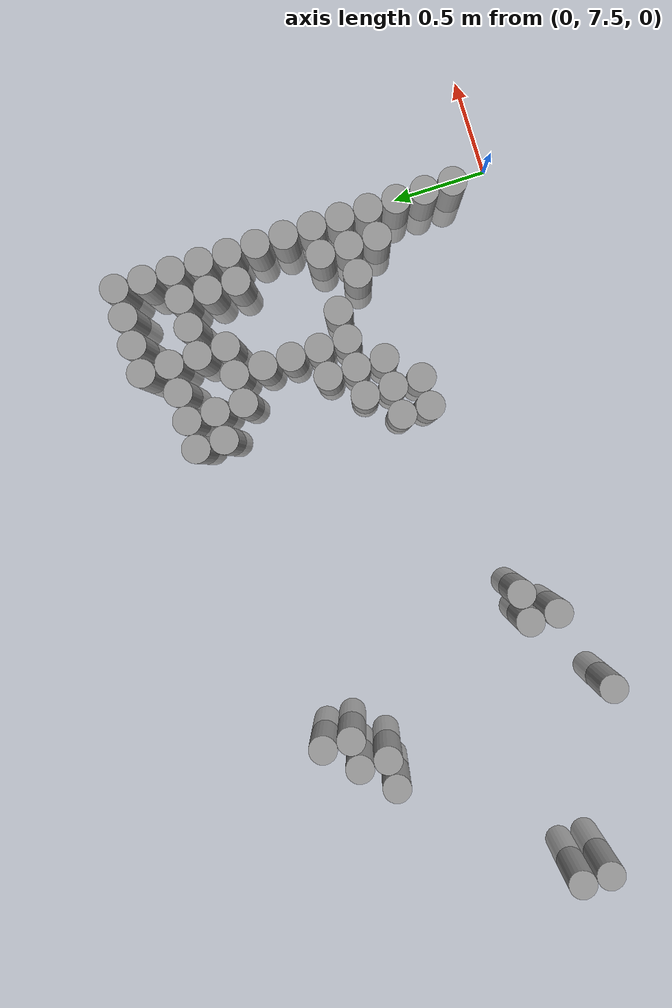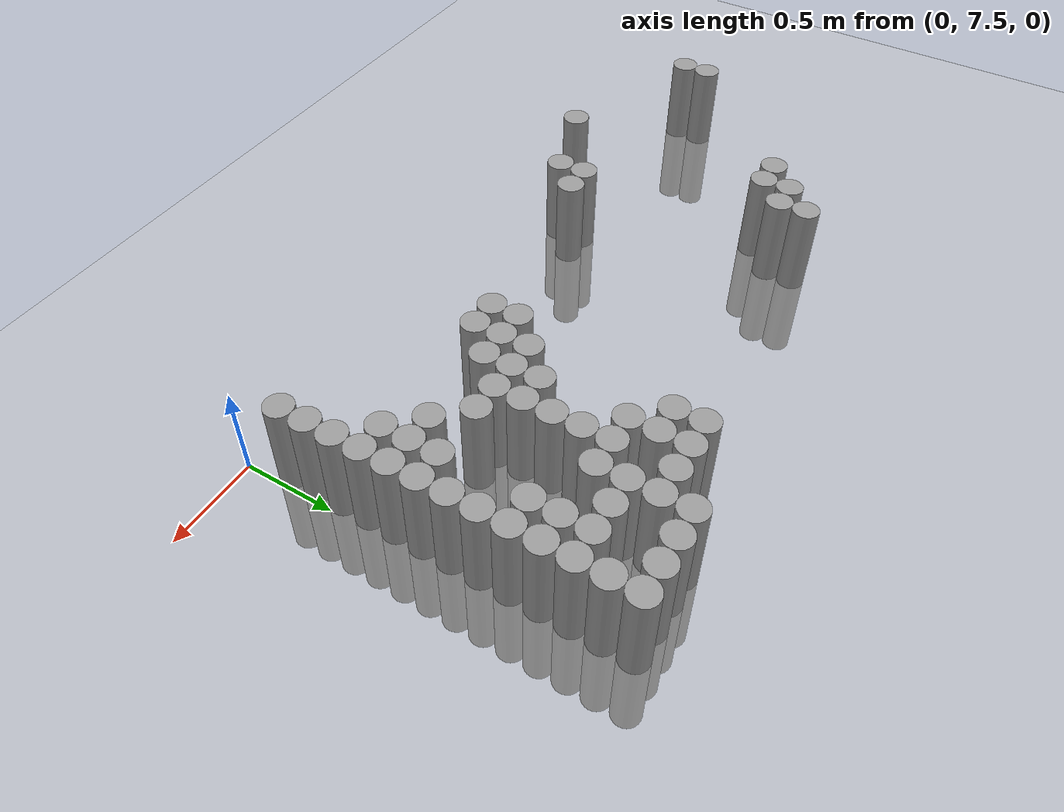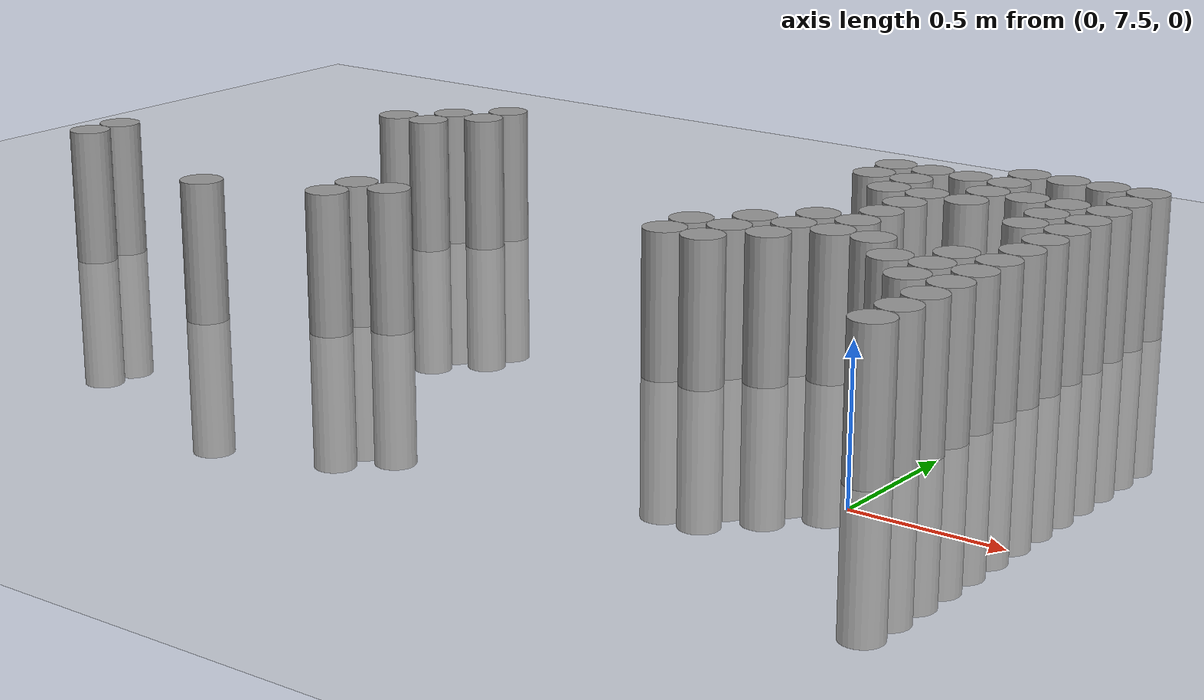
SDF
<sdf version="1.6">
 <world name="default">
  <model name="ground_plane">
   <static>1</static>
   <static>1</static>
   <link name="link">
    <collision name="collision">
     <geometry><plane><normal>0 0 1</normal><size>100 100</size></plane></geometry>
     <surface><friction><ode><mu>100</mu><mu2>50</mu2></ode></friction></surface>
    </collision>
    <visual name="visual">
     <cast_shadows>0</cast_shadows>
     <geometry><plane><normal>0 0 1</normal><size>100 100</size></plane></geometry>
     <material>
      <script><uri>file://media/materials/scripts/gazebo.material</uri><name>Gazebo/Grey</name></script>
     </material>
    </visual>
   </link>
  </model>
  <model name="unit_cylinder_162">
   <static>1</static>
   <pose>-3.675000 8.025000 0.000000 0.000000 0.000000 0.000000</pose>
   <link name="link">
    <inertial>
     <mass>1</mass>
     <inertia><ixx>0.145833</ixx><ixy>0</ixy><ixz>0</ixz><iyy>0.145833</iyy><iyz>0</iyz><izz>0.125</izz></inertia>
    </inertial>
    <collision name="collision">
     <geometry><cylinder><radius>0.075000</radius><length>1</length></cylinder></geometry>
    </collision>
    <visual name="visual">
     <geometry><cylinder><radius>0.075000</radius><length>1</length></cylinder></geometry>
     <material>
      <script><name>Gazebo/Grey</name><uri>file://media/materials/scripts/gazebo.material</uri></script>
     </material>
    </visual>
   </link>
  </model>
  <model name="unit_cylinder_163">
   <static>1</static>
   <pose>-3.675000 8.175000 0.000000 0.000000 0.000000 0.000000</pose>
   <link name="link">
    <inertial>
     <mass>1</mass>
     <inertia><ixx>0.145833</ixx><ixy>0</ixy><ixz>0</ixz><iyy>0.145833</iyy><iyz>0</iyz><izz>0.125</izz></inertia>
    </inertial>
    <collision name="collision">
     <geometry><cylinder><radius>0.075000</radius><length>1</length></cylinder></geometry>
    </collision>
    <visual name="visual">
     <geometry><cylinder><radius>0.075000</radius><length>1</length></cylinder></geometry>
     <material>
      <script><name>Gazebo/Grey</name><uri>file://media/materials/scripts/gazebo.material</uri></script>
     </material>
    </visual>
   </link>
  </model>
  <model name="unit_cylinder_179">
   <static>1</static>
   <pose>-2.925000 8.925000 0.000000 0.000000 0.000000 0.000000</pose>
   <link name="link">
    <inertial>
     <mass>1</mass>
     <inertia><ixx>0.145833</ixx><ixy>0</ixy><ixz>0</ixz><iyy>0.145833</iyy><iyz>0</iyz><izz>0.125</izz></inertia>
    </inertial>
    <collision name="collision">
     <geometry><cylinder><radius>0.075000</radius><length>1</length></cylinder></geometry>
    </collision>
    <visual name="visual">
     <geometry><cylinder><radius>0.075000</radius><length>1</length></cylinder></geometry>
     <material>
      <script><name>Gazebo/Grey</name><uri>file://media/materials/scripts/gazebo.material</uri></script>
     </material>
    </visual>
   </link>
  </model>
  <model name="unit_cylinder_187">
   <static>1</static>
   <pose>-2.775000 7.725000 0.000000 0.000000 0.000000 0.000000</pose>
   <link name="link">
    <inertial>
     <mass>1</mass>
     <inertia><ixx>0.145833</ixx><ixy>0</ixy><ixz>0</ixz><iyy>0.145833</iyy><iyz>0</iyz><izz>0.125</izz></inertia>
    </inertial>
    <collision name="collision">
     <geometry><cylinder><radius>0.075000</radius><length>1</length></cylinder></geometry>
    </collision>
    <visual name="visual">
     <geometry><cylinder><radius>0.075000</radius><length>1</length></cylinder></geometry>
     <material>
      <script><name>Gazebo/Grey</name><uri>file://media/materials/scripts/gazebo.material</uri></script>
     </material>
    </visual>
   </link>
  </model>
  <model name="unit_cylinder_188">
   <static>1</static>
   <pose>-2.775000 8.925000 0.000000 0.000000 0.000000 0.000000</pose>
   <link name="link">
    <inertial>
     <mass>1</mass>
     <inertia><ixx>0.145833</ixx><ixy>0</ixy><ixz>0</ixz><iyy>0.145833</iyy><iyz>0</iyz><izz>0.125</izz></inertia>
    </inertial>
    <collision name="collision">
     <geometry><cylinder><radius>0.075000</radius><length>1</length></cylinder></geometry>
    </collision>
    <visual name="visual">
     <geometry><cylinder><radius>0.075000</radius><length>1</length></cylinder></geometry>
     <material>
      <script><name>Gazebo/Grey</name><uri>file://media/materials/scripts/gazebo.material</uri></script>
     </material>
    </visual>
   </link>
  </model>
  <model name="unit_cylinder_189">
   <static>1</static>
   <pose>-2.775000 9.075000 0.000000 0.000000 0.000000 0.000000</pose>
   <link name="link">
    <inertial>
     <mass>1</mass>
     <inertia><ixx>0.145833</ixx><ixy>0</ixy><ixz>0</ixz><iyy>0.145833</iyy><iyz>0</iyz><izz>0.125</izz></inertia>
    </inertial>
    <collision name="collision">
     <geometry><cylinder><radius>0.075000</radius><length>1</length></cylinder></geometry>
    </collision>
    <visual name="visual">
     <geometry><cylinder><radius>0.075000</radius><length>1</length></cylinder></geometry>
     <material>
      <script><name>Gazebo/Grey</name><uri>file://media/materials/scripts/gazebo.material</uri></script>
     </material>
    </visual>
   </link>
  </model>
  <model name="unit_cylinder_197">
   <static>1</static>
   <pose>-2.625000 9.075000 0.000000 0.000000 0.000000 0.000000</pose>
   <link name="link">
    <inertial>
     <mass>1</mass>
     <inertia><ixx>0.145833</ixx><ixy>0</ixy><ixz>0</ixz><iyy>0.145833</iyy><iyz>0</iyz><izz>0.125</izz></inertia>
    </inertial>
    <collision name="collision">
     <geometry><cylinder><radius>0.075000</radius><length>1</length></cylinder></geometry>
    </collision>
    <visual name="visual">
     <geometry><cylinder><radius>0.075000</radius><length>1</length></cylinder></geometry>
     <material>
      <script><name>Gazebo/Grey</name><uri>file://media/materials/scripts/gazebo.material</uri></script>
     </material>
    </visual>
   </link>
  </model>
  <model name="unit_cylinder_198">
   <static>1</static>
   <pose>-2.625000 9.225000 0.000000 0.000000 0.000000 0.000000</pose>
   <link name="link">
    <inertial>
     <mass>1</mass>
     <inertia><ixx>0.145833</ixx><ixy>0</ixy><ixz>0</ixz><iyy>0.145833</iyy><iyz>0</iyz><izz>0.125</izz></inertia>
    </inertial>
    <collision name="collision">
     <geometry><cylinder><radius>0.075000</radius><length>1</length></cylinder></geometry>
    </collision>
    <visual name="visual">
     <geometry><cylinder><radius>0.075000</radius><length>1</length></cylinder></geometry>
     <material>
      <script><name>Gazebo/Grey</name><uri>file://media/materials/scripts/gazebo.material</uri></script>
     </material>
    </visual>
   </link>
  </model>
  <model name="unit_cylinder_209">
   <static>1</static>
   <pose>-2.325000 7.875000 0.000000 0.000000 0.000000 0.000000</pose>
   <link name="link">
    <inertial>
     <mass>1</mass>
     <inertia><ixx>0.145833</ixx><ixy>0</ixy><ixz>0</ixz><iyy>0.145833</iyy><iyz>0</iyz><izz>0.125</izz></inertia>
    </inertial>
    <collision name="collision">
     <geometry><cylinder><radius>0.075000</radius><length>1</length></cylinder></geometry>
    </collision>
    <visual name="visual">
     <geometry><cylinder><radius>0.075000</radius><length>1</length></cylinder></geometry>
     <material>
      <script><name>Gazebo/Grey</name><uri>file://media/materials/scripts/gazebo.material</uri></script>
     </material>
    </visual>
   </link>
  </model>
  <model name="unit_cylinder_210">
   <static>1</static>
   <pose>-2.325000 8.025000 0.000000 0.000000 0.000000 0.000000</pose>
   <link name="link">
    <inertial>
     <mass>1</mass>
     <inertia><ixx>0.145833</ixx><ixy>0</ixy><ixz>0</ixz><iyy>0.145833</iyy><iyz>0</iyz><izz>0.125</izz></inertia>
    </inertial>
    <collision name="collision">
     <geometry><cylinder><radius>0.075000</radius><length>1</length></cylinder></geometry>
    </collision>
    <visual name="visual">
     <geometry><cylinder><radius>0.075000</radius><length>1</length></cylinder></geometry>
     <material>
      <script><name>Gazebo/Grey</name><uri>file://media/materials/scripts/gazebo.material</uri></script>
     </material>
    </visual>
   </link>
  </model>
  <model name="unit_cylinder_212">
   <static>1</static>
   <pose>-2.175000 8.025000 0.000000 0.000000 0.000000 0.000000</pose>
   <link name="link">
    <inertial>
     <mass>1</mass>
     <inertia><ixx>0.145833</ixx><ixy>0</ixy><ixz>0</ixz><iyy>0.145833</iyy><iyz>0</iyz><izz>0.125</izz></inertia>
    </inertial>
    <collision name="collision">
     <geometry><cylinder><radius>0.075000</radius><length>1</length></cylinder></geometry>
    </collision>
    <visual name="visual">
     <geometry><cylinder><radius>0.075000</radius><length>1</length></cylinder></geometry>
     <material>
      <script><name>Gazebo/Grey</name><uri>file://media/materials/scripts/gazebo.material</uri></script>
     </material>
    </visual>
   </link>
  </model>
  <model name="unit_cylinder_219">
   <static>1</static>
   <pose>-1.125000 8.175000 0.000000 0.000000 0.000000 0.000000</pose>
   <link name="link">
    <inertial>
     <mass>1</mass>
     <inertia><ixx>0.145833</ixx><ixy>0</ixy><ixz>0</ixz><iyy>0.145833</iyy><iyz>0</iyz><izz>0.125</izz></inertia>
    </inertial>
    <collision name="collision">
     <geometry><cylinder><radius>0.075000</radius><length>1</length></cylinder></geometry>
    </collision>
    <visual name="visual">
     <geometry><cylinder><radius>0.075000</radius><length>1</length></cylinder></geometry>
     <material>
      <script><name>Gazebo/Grey</name><uri>file://media/materials/scripts/gazebo.material</uri></script>
     </material>
    </visual>
   </link>
  </model>
  <model name="unit_cylinder_220">
   <static>1</static>
   <pose>-1.125000 8.325000 0.000000 0.000000 0.000000 0.000000</pose>
   <link name="link">
    <inertial>
     <mass>1</mass>
     <inertia><ixx>0.145833</ixx><ixy>0</ixy><ixz>0</ixz><iyy>0.145833</iyy><iyz>0</iyz><izz>0.125</izz></inertia>
    </inertial>
    <collision name="collision">
     <geometry><cylinder><radius>0.075000</radius><length>1</length></cylinder></geometry>
    </collision>
    <visual name="visual">
     <geometry><cylinder><radius>0.075000</radius><length>1</length></cylinder></geometry>
     <material>
      <script><name>Gazebo/Grey</name><uri>file://media/materials/scripts/gazebo.material</uri></script>
     </material>
    </visual>
   </link>
  </model>
  <model name="unit_cylinder_223">
   <static>1</static>
   <pose>-0.975000 8.175000 0.000000 0.000000 0.000000 0.000000</pose>
   <link name="link">
    <inertial>
     <mass>1</mass>
     <inertia><ixx>0.145833</ixx><ixy>0</ixy><ixz>0</ixz><iyy>0.145833</iyy><iyz>0</iyz><izz>0.125</izz></inertia>
    </inertial>
    <collision name="collision">
     <geometry><cylinder><radius>0.075000</radius><length>1</length></cylinder></geometry>
    </collision>
    <visual name="visual">
     <geometry><cylinder><radius>0.075000</radius><length>1</length></cylinder></geometry>
     <material>
      <script><name>Gazebo/Grey</name><uri>file://media/materials/scripts/gazebo.material</uri></script>
     </material>
    </visual>
   </link>
  </model>
  <model name="unit_cylinder_224">
   <static>1</static>
   <pose>-0.975000 8.325000 0.000000 0.000000 0.000000 0.000000</pose>
   <link name="link">
    <inertial>
     <mass>1</mass>
     <inertia><ixx>0.145833</ixx><ixy>0</ixy><ixz>0</ixz><iyy>0.145833</iyy><iyz>0</iyz><izz>0.125</izz></inertia>
    </inertial>
    <collision name="collision">
     <geometry><cylinder><radius>0.075000</radius><length>1</length></cylinder></geometry>
    </collision>
    <visual name="visual">
     <geometry><cylinder><radius>0.075000</radius><length>1</length></cylinder></geometry>
     <material>
      <script><name>Gazebo/Grey</name><uri>file://media/materials/scripts/gazebo.material</uri></script>
     </material>
    </visual>
   </link>
  </model>
  <model name="unit_cylinder_225">
   <static>1</static>
   <pose>-0.975000 8.475000 0.000000 0.000000 0.000000 0.000000</pose>
   <link name="link">
    <inertial>
     <mass>1</mass>
     <inertia><ixx>0.145833</ixx><ixy>0</ixy><ixz>0</ixz><iyy>0.145833</iyy><iyz>0</iyz><izz>0.125</izz></inertia>
    </inertial>
    <collision name="collision">
     <geometry><cylinder><radius>0.075000</radius><length>1</length></cylinder></geometry>
    </collision>
    <visual name="visual">
     <geometry><cylinder><radius>0.075000</radius><length>1</length></cylinder></geometry>
     <material>
      <script><name>Gazebo/Grey</name><uri>file://media/materials/scripts/gazebo.material</uri></script>
     </material>
    </visual>
   </link>
  </model>
  <model name="unit_cylinder_226">
   <static>1</static>
   <pose>-0.975000 9.225000 0.000000 0.000000 0.000000 0.000000</pose>
   <link name="link">
    <inertial>
     <mass>1</mass>
     <inertia><ixx>0.145833</ixx><ixy>0</ixy><ixz>0</ixz><iyy>0.145833</iyy><iyz>0</iyz><izz>0.125</izz></inertia>
    </inertial>
    <collision name="collision">
     <geometry><cylinder><radius>0.075000</radius><length>1</length></cylinder></geometry>
    </collision>
    <visual name="visual">
     <geometry><cylinder><radius>0.075000</radius><length>1</length></cylinder></geometry>
     <material>
      <script><name>Gazebo/Grey</name><uri>file://media/materials/scripts/gazebo.material</uri></script>
     </material>
    </visual>
   </link>
  </model>
  <model name="unit_cylinder_227">
   <static>1</static>
   <pose>-0.975000 9.375000 0.000000 0.000000 0.000000 0.000000</pose>
   <link name="link">
    <inertial>
     <mass>1</mass>
     <inertia><ixx>0.145833</ixx><ixy>0</ixy><ixz>0</ixz><iyy>0.145833</iyy><iyz>0</iyz><izz>0.125</izz></inertia>
    </inertial>
    <collision name="collision">
     <geometry><cylinder><radius>0.075000</radius><length>1</length></cylinder></geometry>
    </collision>
    <visual name="visual">
     <geometry><cylinder><radius>0.075000</radius><length>1</length></cylinder></geometry>
     <material>
      <script><name>Gazebo/Grey</name><uri>file://media/materials/scripts/gazebo.material</uri></script>
     </material>
    </visual>
   </link>
  </model>
  <model name="unit_cylinder_230">
   <static>1</static>
   <pose>-0.825000 8.325000 0.000000 0.000000 0.000000 0.000000</pose>
   <link name="link">
    <inertial>
     <mass>1</mass>
     <inertia><ixx>0.145833</ixx><ixy>0</ixy><ixz>0</ixz><iyy>0.145833</iyy><iyz>0</iyz><izz>0.125</izz></inertia>
    </inertial>
    <collision name="collision">
     <geometry><cylinder><radius>0.075000</radius><length>1</length></cylinder></geometry>
    </collision>
    <visual name="visual">
     <geometry><cylinder><radius>0.075000</radius><length>1</length></cylinder></geometry>
     <material>
      <script><name>Gazebo/Grey</name><uri>file://media/materials/scripts/gazebo.material</uri></script>
     </material>
    </visual>
   </link>
  </model>
  <model name="unit_cylinder_231">
   <static>1</static>
   <pose>-0.825000 8.475000 0.000000 0.000000 0.000000 0.000000</pose>
   <link name="link">
    <inertial>
     <mass>1</mass>
     <inertia><ixx>0.145833</ixx><ixy>0</ixy><ixz>0</ixz><iyy>0.145833</iyy><iyz>0</iyz><izz>0.125</izz></inertia>
    </inertial>
    <collision name="collision">
     <geometry><cylinder><radius>0.075000</radius><length>1</length></cylinder></geometry>
    </collision>
    <visual name="visual">
     <geometry><cylinder><radius>0.075000</radius><length>1</length></cylinder></geometry>
     <material>
      <script><name>Gazebo/Grey</name><uri>file://media/materials/scripts/gazebo.material</uri></script>
     </material>
    </visual>
   </link>
  </model>
  <model name="unit_cylinder_232">
   <static>1</static>
   <pose>-0.825000 8.625000 0.000000 0.000000 0.000000 0.000000</pose>
   <link name="link">
    <inertial>
     <mass>1</mass>
     <inertia><ixx>0.145833</ixx><ixy>0</ixy><ixz>0</ixz><iyy>0.145833</iyy><iyz>0</iyz><izz>0.125</izz></inertia>
    </inertial>
    <collision name="collision">
     <geometry><cylinder><radius>0.075000</radius><length>1</length></cylinder></geometry>
    </collision>
    <visual name="visual">
     <geometry><cylinder><radius>0.075000</radius><length>1</length></cylinder></geometry>
     <material>
      <script><name>Gazebo/Grey</name><uri>file://media/materials/scripts/gazebo.material</uri></script>
     </material>
    </visual>
   </link>
  </model>
  <model name="unit_cylinder_233">
   <static>1</static>
   <pose>-0.825000 9.075000 0.000000 0.000000 0.000000 0.000000</pose>
   <link name="link">
    <inertial>
     <mass>1</mass>
     <inertia><ixx>0.145833</ixx><ixy>0</ixy><ixz>0</ixz><iyy>0.145833</iyy><iyz>0</iyz><izz>0.125</izz></inertia>
    </inertial>
    <collision name="collision">
     <geometry><cylinder><radius>0.075000</radius><length>1</length></cylinder></geometry>
    </collision>
    <visual name="visual">
     <geometry><cylinder><radius>0.075000</radius><length>1</length></cylinder></geometry>
     <material>
      <script><name>Gazebo/Grey</name><uri>file://media/materials/scripts/gazebo.material</uri></script>
     </material>
    </visual>
   </link>
  </model>
  <model name="unit_cylinder_234">
   <static>1</static>
   <pose>-0.825000 9.225000 0.000000 0.000000 0.000000 0.000000</pose>
   <link name="link">
    <inertial>
     <mass>1</mass>
     <inertia><ixx>0.145833</ixx><ixy>0</ixy><ixz>0</ixz><iyy>0.145833</iyy><iyz>0</iyz><izz>0.125</izz></inertia>
    </inertial>
    <collision name="collision">
     <geometry><cylinder><radius>0.075000</radius><length>1</length></cylinder></geometry>
    </collision>
    <visual name="visual">
     <geometry><cylinder><radius>0.075000</radius><length>1</length></cylinder></geometry>
     <material>
      <script><name>Gazebo/Grey</name><uri>file://media/materials/scripts/gazebo.material</uri></script>
     </material>
    </visual>
   </link>
  </model>
  <model name="unit_cylinder_235">
   <static>1</static>
   <pose>-0.825000 9.375000 0.000000 0.000000 0.000000 0.000000</pose>
   <link name="link">
    <inertial>
     <mass>1</mass>
     <inertia><ixx>0.145833</ixx><ixy>0</ixy><ixz>0</ixz><iyy>0.145833</iyy><iyz>0</iyz><izz>0.125</izz></inertia>
    </inertial>
    <collision name="collision">
     <geometry><cylinder><radius>0.075000</radius><length>1</length></cylinder></geometry>
    </collision>
    <visual name="visual">
     <geometry><cylinder><radius>0.075000</radius><length>1</length></cylinder></geometry>
     <material>
      <script><name>Gazebo/Grey</name><uri>file://media/materials/scripts/gazebo.material</uri></script>
     </material>
    </visual>
   </link>
  </model>
  <model name="unit_cylinder_236">
   <static>1</static>
   <pose>-0.675000 8.475000 0.000000 0.000000 0.000000 0.000000</pose>
   <link name="link">
    <inertial>
     <mass>1</mass>
     <inertia><ixx>0.145833</ixx><ixy>0</ixy><ixz>0</ixz><iyy>0.145833</iyy><iyz>0</iyz><izz>0.125</izz></inertia>
    </inertial>
    <collision name="collision">
     <geometry><cylinder><radius>0.075000</radius><length>1</length></cylinder></geometry>
    </collision>
    <visual name="visual">
     <geometry><cylinder><radius>0.075000</radius><length>1</length></cylinder></geometry>
     <material>
      <script><name>Gazebo/Grey</name><uri>file://media/materials/scripts/gazebo.material</uri></script>
     </material>
    </visual>
   </link>
  </model>
  <model name="unit_cylinder_237">
   <static>1</static>
   <pose>-0.675000 8.625000 0.000000 0.000000 0.000000 0.000000</pose>
   <link name="link">
    <inertial>
     <mass>1</mass>
     <inertia><ixx>0.145833</ixx><ixy>0</ixy><ixz>0</ixz><iyy>0.145833</iyy><iyz>0</iyz><izz>0.125</izz></inertia>
    </inertial>
    <collision name="collision">
     <geometry><cylinder><radius>0.075000</radius><length>1</length></cylinder></geometry>
    </collision>
    <visual name="visual">
     <geometry><cylinder><radius>0.075000</radius><length>1</length></cylinder></geometry>
     <material>
      <script><name>Gazebo/Grey</name><uri>file://media/materials/scripts/gazebo.material</uri></script>
     </material>
    </visual>
   </link>
  </model>
  <model name="unit_cylinder_238">
   <static>1</static>
   <pose>-0.675000 8.775000 0.000000 0.000000 0.000000 0.000000</pose>
   <link name="link">
    <inertial>
     <mass>1</mass>
     <inertia><ixx>0.145833</ixx><ixy>0</ixy><ixz>0</ixz><iyy>0.145833</iyy><iyz>0</iyz><izz>0.125</izz></inertia>
    </inertial>
    <collision name="collision">
     <geometry><cylinder><radius>0.075000</radius><length>1</length></cylinder></geometry>
    </collision>
    <visual name="visual">
     <geometry><cylinder><radius>0.075000</radius><length>1</length></cylinder></geometry>
     <material>
      <script><name>Gazebo/Grey</name><uri>file://media/materials/scripts/gazebo.material</uri></script>
     </material>
    </visual>
   </link>
  </model>
  <model name="unit_cylinder_239">
   <static>1</static>
   <pose>-0.675000 8.925000 0.000000 0.000000 0.000000 0.000000</pose>
   <link name="link">
    <inertial>
     <mass>1</mass>
     <inertia><ixx>0.145833</ixx><ixy>0</ixy><ixz>0</ixz><iyy>0.145833</iyy><iyz>0</iyz><izz>0.125</izz></inertia>
    </inertial>
    <collision name="collision">
     <geometry><cylinder><radius>0.075000</radius><length>1</length></cylinder></geometry>
    </collision>
    <visual name="visual">
     <geometry><cylinder><radius>0.075000</radius><length>1</length></cylinder></geometry>
     <material>
      <script><name>Gazebo/Grey</name><uri>file://media/materials/scripts/gazebo.material</uri></script>
     </material>
    </visual>
   </link>
  </model>
  <model name="unit_cylinder_240">
   <static>1</static>
   <pose>-0.675000 9.075000 0.000000 0.000000 0.000000 0.000000</pose>
   <link name="link">
    <inertial>
     <mass>1</mass>
     <inertia><ixx>0.145833</ixx><ixy>0</ixy><ixz>0</ixz><iyy>0.145833</iyy><iyz>0</iyz><izz>0.125</izz></inertia>
    </inertial>
    <collision name="collision">
     <geometry><cylinder><radius>0.075000</radius><length>1</length></cylinder></geometry>
    </collision>
    <visual name="visual">
     <geometry><cylinder><radius>0.075000</radius><length>1</length></cylinder></geometry>
     <material>
      <script><name>Gazebo/Grey</name><uri>file://media/materials/scripts/gazebo.material</uri></script>
     </material>
    </visual>
   </link>
  </model>
  <model name="unit_cylinder_241">
   <static>1</static>
   <pose>-0.675000 9.375000 0.000000 0.000000 0.000000 0.000000</pose>
   <link name="link">
    <inertial>
     <mass>1</mass>
     <inertia><ixx>0.145833</ixx><ixy>0</ixy><ixz>0</ixz><iyy>0.145833</iyy><iyz>0</iyz><izz>0.125</izz></inertia>
    </inertial>
    <collision name="collision">
     <geometry><cylinder><radius>0.075000</radius><length>1</length></cylinder></geometry>
    </collision>
    <visual name="visual">
     <geometry><cylinder><radius>0.075000</radius><length>1</length></cylinder></geometry>
     <material>
      <script><name>Gazebo/Grey</name><uri>file://media/materials/scripts/gazebo.material</uri></script>
     </material>
    </visual>
   </link>
  </model>
  <model name="unit_cylinder_242">
   <static>1</static>
   <pose>-0.525000 8.475000 0.000000 0.000000 0.000000 0.000000</pose>
   <link name="link">
    <inertial>
     <mass>1</mass>
     <inertia><ixx>0.145833</ixx><ixy>0</ixy><ixz>0</ixz><iyy>0.145833</iyy><iyz>0</iyz><izz>0.125</izz></inertia>
    </inertial>
    <collision name="collision">
     <geometry><cylinder><radius>0.075000</radius><length>1</length></cylinder></geometry>
    </collision>
    <visual name="visual">
     <geometry><cylinder><radius>0.075000</radius><length>1</length></cylinder></geometry>
     <material>
      <script><name>Gazebo/Grey</name><uri>file://media/materials/scripts/gazebo.material</uri></script>
     </material>
    </visual>
   </link>
  </model>
  <model name="unit_cylinder_243">
   <static>1</static>
   <pose>-0.525000 9.075000 0.000000 0.000000 0.000000 0.000000</pose>
   <link name="link">
    <inertial>
     <mass>1</mass>
     <inertia><ixx>0.145833</ixx><ixy>0</ixy><ixz>0</ixz><iyy>0.145833</iyy><iyz>0</iyz><izz>0.125</izz></inertia>
    </inertial>
    <collision name="collision">
     <geometry><cylinder><radius>0.075000</radius><length>1</length></cylinder></geometry>
    </collision>
    <visual name="visual">
     <geometry><cylinder><radius>0.075000</radius><length>1</length></cylinder></geometry>
     <material>
      <script><name>Gazebo/Grey</name><uri>file://media/materials/scripts/gazebo.material</uri></script>
     </material>
    </visual>
   </link>
  </model>
  <model name="unit_cylinder_244">
   <static>1</static>
   <pose>-0.525000 9.225000 0.000000 0.000000 0.000000 0.000000</pose>
   <link name="link">
    <inertial>
     <mass>1</mass>
     <inertia><ixx>0.145833</ixx><ixy>0</ixy><ixz>0</ixz><iyy>0.145833</iyy><iyz>0</iyz><izz>0.125</izz></inertia>
    </inertial>
    <collision name="collision">
     <geometry><cylinder><radius>0.075000</radius><length>1</length></cylinder></geometry>
    </collision>
    <visual name="visual">
     <geometry><cylinder><radius>0.075000</radius><length>1</length></cylinder></geometry>
     <material>
      <script><name>Gazebo/Grey</name><uri>file://media/materials/scripts/gazebo.material</uri></script>
     </material>
    </visual>
   </link>
  </model>
  <model name="unit_cylinder_245">
   <static>1</static>
   <pose>-0.525000 9.375000 0.000000 0.000000 0.000000 0.000000</pose>
   <link name="link">
    <inertial>
     <mass>1</mass>
     <inertia><ixx>0.145833</ixx><ixy>0</ixy><ixz>0</ixz><iyy>0.145833</iyy><iyz>0</iyz><izz>0.125</izz></inertia>
    </inertial>
    <collision name="collision">
     <geometry><cylinder><radius>0.075000</radius><length>1</length></cylinder></geometry>
    </collision>
    <visual name="visual">
     <geometry><cylinder><radius>0.075000</radius><length>1</length></cylinder></geometry>
     <material>
      <script><name>Gazebo/Grey</name><uri>file://media/materials/scripts/gazebo.material</uri></script>
     </material>
    </visual>
   </link>
  </model>
  <model name="unit_cylinder_246">
   <static>1</static>
   <pose>-0.525000 9.525000 0.000000 0.000000 0.000000 0.000000</pose>
   <link name="link">
    <inertial>
     <mass>1</mass>
     <inertia><ixx>0.145833</ixx><ixy>0</ixy><ixz>0</ixz><iyy>0.145833</iyy><iyz>0</iyz><izz>0.125</izz></inertia>
    </inertial>
    <collision name="collision">
     <geometry><cylinder><radius>0.075000</radius><length>1</length></cylinder></geometry>
    </collision>
    <visual name="visual">
     <geometry><cylinder><radius>0.075000</radius><length>1</length></cylinder></geometry>
     <material>
      <script><name>Gazebo/Grey</name><uri>file://media/materials/scripts/gazebo.material</uri></script>
     </material>
    </visual>
   </link>
  </model>
  <model name="unit_cylinder_247">
   <static>1</static>
   <pose>-0.375000 8.325000 0.000000 0.000000 0.000000 0.000000</pose>
   <link name="link">
    <inertial>
     <mass>1</mass>
     <inertia><ixx>0.145833</ixx><ixy>0</ixy><ixz>0</ixz><iyy>0.145833</iyy><iyz>0</iyz><izz>0.125</izz></inertia>
    </inertial>
    <collision name="collision">
     <geometry><cylinder><radius>0.075000</radius><length>1</length></cylinder></geometry>
    </collision>
    <visual name="visual">
     <geometry><cylinder><radius>0.075000</radius><length>1</length></cylinder></geometry>
     <material>
      <script><name>Gazebo/Grey</name><uri>file://media/materials/scripts/gazebo.material</uri></script>
     </material>
    </visual>
   </link>
  </model>
  <model name="unit_cylinder_248">
   <static>1</static>
   <pose>-0.375000 9.225000 0.000000 0.000000 0.000000 0.000000</pose>
   <link name="link">
    <inertial>
     <mass>1</mass>
     <inertia><ixx>0.145833</ixx><ixy>0</ixy><ixz>0</ixz><iyy>0.145833</iyy><iyz>0</iyz><izz>0.125</izz></inertia>
    </inertial>
    <collision name="collision">
     <geometry><cylinder><radius>0.075000</radius><length>1</length></cylinder></geometry>
    </collision>
    <visual name="visual">
     <geometry><cylinder><radius>0.075000</radius><length>1</length></cylinder></geometry>
     <material>
      <script><name>Gazebo/Grey</name><uri>file://media/materials/scripts/gazebo.material</uri></script>
     </material>
    </visual>
   </link>
  </model>
  <model name="unit_cylinder_249">
   <static>1</static>
   <pose>-0.375000 9.525000 0.000000 0.000000 0.000000 0.000000</pose>
   <link name="link">
    <inertial>
     <mass>1</mass>
     <inertia><ixx>0.145833</ixx><ixy>0</ixy><ixz>0</ixz><iyy>0.145833</iyy><iyz>0</iyz><izz>0.125</izz></inertia>
    </inertial>
    <collision name="collision">
     <geometry><cylinder><radius>0.075000</radius><length>1</length></cylinder></geometry>
    </collision>
    <visual name="visual">
     <geometry><cylinder><radius>0.075000</radius><length>1</length></cylinder></geometry>
     <material>
      <script><name>Gazebo/Grey</name><uri>file://media/materials/scripts/gazebo.material</uri></script>
     </material>
    </visual>
   </link>
  </model>
  <model name="unit_cylinder_254">
   <static>1</static>
   <pose>-0.225000 8.175000 0.000000 0.000000 0.000000 0.000000</pose>
   <link name="link">
    <inertial>
     <mass>1</mass>
     <inertia><ixx>0.145833</ixx><ixy>0</ixy><ixz>0</ixz><iyy>0.145833</iyy><iyz>0</iyz><izz>0.125</izz></inertia>
    </inertial>
    <collision name="collision">
     <geometry><cylinder><radius>0.075000</radius><length>1</length></cylinder></geometry>
    </collision>
    <visual name="visual">
     <geometry><cylinder><radius>0.075000</radius><length>1</length></cylinder></geometry>
     <material>
      <script><name>Gazebo/Grey</name><uri>file://media/materials/scripts/gazebo.material</uri></script>
     </material>
    </visual>
   </link>
  </model>
  <model name="unit_cylinder_255">
   <static>1</static>
   <pose>-0.225000 8.325000 0.000000 0.000000 0.000000 0.000000</pose>
   <link name="link">
    <inertial>
     <mass>1</mass>
     <inertia><ixx>0.145833</ixx><ixy>0</ixy><ixz>0</ixz><iyy>0.145833</iyy><iyz>0</iyz><izz>0.125</izz></inertia>
    </inertial>
    <collision name="collision">
     <geometry><cylinder><radius>0.075000</radius><length>1</length></cylinder></geometry>
    </collision>
    <visual name="visual">
     <geometry><cylinder><radius>0.075000</radius><length>1</length></cylinder></geometry>
     <material>
      <script><name>Gazebo/Grey</name><uri>file://media/materials/scripts/gazebo.material</uri></script>
     </material>
    </visual>
   </link>
  </model>
  <model name="unit_cylinder_256">
   <static>1</static>
   <pose>-0.225000 8.475000 0.000000 0.000000 0.000000 0.000000</pose>
   <link name="link">
    <inertial>
     <mass>1</mass>
     <inertia><ixx>0.145833</ixx><ixy>0</ixy><ixz>0</ixz><iyy>0.145833</iyy><iyz>0</iyz><izz>0.125</izz></inertia>
    </inertial>
    <collision name="collision">
     <geometry><cylinder><radius>0.075000</radius><length>1</length></cylinder></geometry>
    </collision>
    <visual name="visual">
     <geometry><cylinder><radius>0.075000</radius><length>1</length></cylinder></geometry>
     <material>
      <script><name>Gazebo/Grey</name><uri>file://media/materials/scripts/gazebo.material</uri></script>
     </material>
    </visual>
   </link>
  </model>
  <model name="unit_cylinder_257">
   <static>1</static>
   <pose>-0.225000 8.925000 0.000000 0.000000 0.000000 0.000000</pose>
   <link name="link">
    <inertial>
     <mass>1</mass>
     <inertia><ixx>0.145833</ixx><ixy>0</ixy><ixz>0</ixz><iyy>0.145833</iyy><iyz>0</iyz><izz>0.125</izz></inertia>
    </inertial>
    <collision name="collision">
     <geometry><cylinder><radius>0.075000</radius><length>1</length></cylinder></geometry>
    </collision>
    <visual name="visual">
     <geometry><cylinder><radius>0.075000</radius><length>1</length></cylinder></geometry>
     <material>
      <script><name>Gazebo/Grey</name><uri>file://media/materials/scripts/gazebo.material</uri></script>
     </material>
    </visual>
   </link>
  </model>
  <model name="unit_cylinder_258">
   <static>1</static>
   <pose>-0.225000 9.075000 0.000000 0.000000 0.000000 0.000000</pose>
   <link name="link">
    <inertial>
     <mass>1</mass>
     <inertia><ixx>0.145833</ixx><ixy>0</ixy><ixz>0</ixz><iyy>0.145833</iyy><iyz>0</iyz><izz>0.125</izz></inertia>
    </inertial>
    <collision name="collision">
     <geometry><cylinder><radius>0.075000</radius><length>1</length></cylinder></geometry>
    </collision>
    <visual name="visual">
     <geometry><cylinder><radius>0.075000</radius><length>1</length></cylinder></geometry>
     <material>
      <script><name>Gazebo/Grey</name><uri>file://media/materials/scripts/gazebo.material</uri></script>
     </material>
    </visual>
   </link>
  </model>
  <model name="unit_cylinder_259">
   <static>1</static>
   <pose>-0.225000 9.225000 0.000000 0.000000 0.000000 0.000000</pose>
   <link name="link">
    <inertial>
     <mass>1</mass>
     <inertia><ixx>0.145833</ixx><ixy>0</ixy><ixz>0</ixz><iyy>0.145833</iyy><iyz>0</iyz><izz>0.125</izz></inertia>
    </inertial>
    <collision name="collision">
     <geometry><cylinder><radius>0.075000</radius><length>1</length></cylinder></geometry>
    </collision>
    <visual name="visual">
     <geometry><cylinder><radius>0.075000</radius><length>1</length></cylinder></geometry>
     <material>
      <script><name>Gazebo/Grey</name><uri>file://media/materials/scripts/gazebo.material</uri></script>
     </material>
    </visual>
   </link>
  </model>
  <model name="unit_cylinder_260">
   <static>1</static>
   <pose>-0.225000 9.525000 0.000000 0.000000 0.000000 0.000000</pose>
   <link name="link">
    <inertial>
     <mass>1</mass>
     <inertia><ixx>0.145833</ixx><ixy>0</ixy><ixz>0</ixz><iyy>0.145833</iyy><iyz>0</iyz><izz>0.125</izz></inertia>
    </inertial>
    <collision name="collision">
     <geometry><cylinder><radius>0.075000</radius><length>1</length></cylinder></geometry>
    </collision>
    <visual name="visual">
     <geometry><cylinder><radius>0.075000</radius><length>1</length></cylinder></geometry>
     <material>
      <script><name>Gazebo/Grey</name><uri>file://media/materials/scripts/gazebo.material</uri></script>
     </material>
    </visual>
   </link>
  </model>
  <model name="unit_cylinder_278">
   <static>1</static>
   <pose>-0.075000 7.725000 0.000000 0.000000 0.000000 0.000000</pose>
   <link name="link">
    <inertial>
     <mass>1</mass>
     <inertia><ixx>0.145833</ixx><ixy>0</ixy><ixz>0</ixz><iyy>0.145833</iyy><iyz>0</iyz><izz>0.125</izz></inertia>
    </inertial>
    <collision name="collision">
     <geometry><cylinder><radius>0.075000</radius><length>1</length></cylinder></geometry>
    </collision>
    <visual name="visual">
     <geometry><cylinder><radius>0.075000</radius><length>1</length></cylinder></geometry>
     <material>
      <script><name>Gazebo/Grey</name><uri>file://media/materials/scripts/gazebo.material</uri></script>
     </material>
    </visual>
   </link>
  </model>
  <model name="unit_cylinder_279">
   <static>1</static>
   <pose>-0.075000 7.875000 0.000000 0.000000 0.000000 0.000000</pose>
   <link name="link">
    <inertial>
     <mass>1</mass>
     <inertia><ixx>0.145833</ixx><ixy>0</ixy><ixz>0</ixz><iyy>0.145833</iyy><iyz>0</iyz><izz>0.125</izz></inertia>
    </inertial>
    <collision name="collision">
     <geometry><cylinder><radius>0.075000</radius><length>1</length></cylinder></geometry>
    </collision>
    <visual name="visual">
     <geometry><cylinder><radius>0.075000</radius><length>1</length></cylinder></geometry>
     <material>
      <script><name>Gazebo/Grey</name><uri>file://media/materials/scripts/gazebo.material</uri></script>
     </material>
    </visual>
   </link>
  </model>
  <model name="unit_cylinder_280">
   <static>1</static>
   <pose>-0.075000 8.025000 0.000000 0.000000 0.000000 0.000000</pose>
   <link name="link">
    <inertial>
     <mass>1</mass>
     <inertia><ixx>0.145833</ixx><ixy>0</ixy><ixz>0</ixz><iyy>0.145833</iyy><iyz>0</iyz><izz>0.125</izz></inertia>
    </inertial>
    <collision name="collision">
     <geometry><cylinder><radius>0.075000</radius><length>1</length></cylinder></geometry>
    </collision>
    <visual name="visual">
     <geometry><cylinder><radius>0.075000</radius><length>1</length></cylinder></geometry>
     <material>
      <script><name>Gazebo/Grey</name><uri>file://media/materials/scripts/gazebo.material</uri></script>
     </material>
    </visual>
   </link>
  </model>
  <model name="unit_cylinder_281">
   <static>1</static>
   <pose>-0.075000 8.175000 0.000000 0.000000 0.000000 0.000000</pose>
   <link name="link">
    <inertial>
     <mass>1</mass>
     <inertia><ixx>0.145833</ixx><ixy>0</ixy><ixz>0</ixz><iyy>0.145833</iyy><iyz>0</iyz><izz>0.125</izz></inertia>
    </inertial>
    <collision name="collision">
     <geometry><cylinder><radius>0.075000</radius><length>1</length></cylinder></geometry>
    </collision>
    <visual name="visual">
     <geometry><cylinder><radius>0.075000</radius><length>1</length></cylinder></geometry>
     <material>
      <script><name>Gazebo/Grey</name><uri>file://media/materials/scripts/gazebo.material</uri></script>
     </material>
    </visual>
   </link>
  </model>
  <model name="unit_cylinder_282">
   <static>1</static>
   <pose>-0.075000 8.325000 0.000000 0.000000 0.000000 0.000000</pose>
   <link name="link">
    <inertial>
     <mass>1</mass>
     <inertia><ixx>0.145833</ixx><ixy>0</ixy><ixz>0</ixz><iyy>0.145833</iyy><iyz>0</iyz><izz>0.125</izz></inertia>
    </inertial>
    <collision name="collision">
     <geometry><cylinder><radius>0.075000</radius><length>1</length></cylinder></geometry>
    </collision>
    <visual name="visual">
     <geometry><cylinder><radius>0.075000</radius><length>1</length></cylinder></geometry>
     <material>
      <script><name>Gazebo/Grey</name><uri>file://media/materials/scripts/gazebo.material</uri></script>
     </material>
    </visual>
   </link>
  </model>
  <model name="unit_cylinder_283">
   <static>1</static>
   <pose>-0.075000 8.475000 0.000000 0.000000 0.000000 0.000000</pose>
   <link name="link">
    <inertial>
     <mass>1</mass>
     <inertia><ixx>0.145833</ixx><ixy>0</ixy><ixz>0</ixz><iyy>0.145833</iyy><iyz>0</iyz><izz>0.125</izz></inertia>
    </inertial>
    <collision name="collision">
     <geometry><cylinder><radius>0.075000</radius><length>1</length></cylinder></geometry>
    </collision>
    <visual name="visual">
     <geometry><cylinder><radius>0.075000</radius><length>1</length></cylinder></geometry>
     <material>
      <script><name>Gazebo/Grey</name><uri>file://media/materials/scripts/gazebo.material</uri></script>
     </material>
    </visual>
   </link>
  </model>
  <model name="unit_cylinder_284">
   <static>1</static>
   <pose>-0.075000 8.625000 0.000000 0.000000 0.000000 0.000000</pose>
   <link name="link">
    <inertial>
     <mass>1</mass>
     <inertia><ixx>0.145833</ixx><ixy>0</ixy><ixz>0</ixz><iyy>0.145833</iyy><iyz>0</iyz><izz>0.125</izz></inertia>
    </inertial>
    <collision name="collision">
     <geometry><cylinder><radius>0.075000</radius><length>1</length></cylinder></geometry>
    </collision>
    <visual name="visual">
     <geometry><cylinder><radius>0.075000</radius><length>1</length></cylinder></geometry>
     <material>
      <script><name>Gazebo/Grey</name><uri>file://media/materials/scripts/gazebo.material</uri></script>
     </material>
    </visual>
   </link>
  </model>
  <model name="unit_cylinder_285">
   <static>1</static>
   <pose>-0.075000 8.775000 0.000000 0.000000 0.000000 0.000000</pose>
   <link name="link">
    <inertial>
     <mass>1</mass>
     <inertia><ixx>0.145833</ixx><ixy>0</ixy><ixz>0</ixz><iyy>0.145833</iyy><iyz>0</iyz><izz>0.125</izz></inertia>
    </inertial>
    <collision name="collision">
     <geometry><cylinder><radius>0.075000</radius><length>1</length></cylinder></geometry>
    </collision>
    <visual name="visual">
     <geometry><cylinder><radius>0.075000</radius><length>1</length></cylinder></geometry>
     <material>
      <script><name>Gazebo/Grey</name><uri>file://media/materials/scripts/gazebo.material</uri></script>
     </material>
    </visual>
   </link>
  </model>
  <model name="unit_cylinder_286">
   <static>1</static>
   <pose>-0.075000 8.925000 0.000000 0.000000 0.000000 0.000000</pose>
   <link name="link">
    <inertial>
     <mass>1</mass>
     <inertia><ixx>0.145833</ixx><ixy>0</ixy><ixz>0</ixz><iyy>0.145833</iyy><iyz>0</iyz><izz>0.125</izz></inertia>
    </inertial>
    <collision name="collision">
     <geometry><cylinder><radius>0.075000</radius><length>1</length></cylinder></geometry>
    </collision>
    <visual name="visual">
     <geometry><cylinder><radius>0.075000</radius><length>1</length></cylinder></geometry>
     <material>
      <script><name>Gazebo/Grey</name><uri>file://media/materials/scripts/gazebo.material</uri></script>
     </material>
    </visual>
   </link>
  </model>
  <model name="unit_cylinder_287">
   <static>1</static>
   <pose>-0.075000 9.075000 0.000000 0.000000 0.000000 0.000000</pose>
   <link name="link">
    <inertial>
     <mass>1</mass>
     <inertia><ixx>0.145833</ixx><ixy>0</ixy><ixz>0</ixz><iyy>0.145833</iyy><iyz>0</iyz><izz>0.125</izz></inertia>
    </inertial>
    <collision name="collision">
     <geometry><cylinder><radius>0.075000</radius><length>1</length></cylinder></geometry>
    </collision>
    <visual name="visual">
     <geometry><cylinder><radius>0.075000</radius><length>1</length></cylinder></geometry>
     <material>
      <script><name>Gazebo/Grey</name><uri>file://media/materials/scripts/gazebo.material</uri></script>
     </material>
    </visual>
   </link>
  </model>
  <model name="unit_cylinder_288">
   <static>1</static>
   <pose>-0.075000 9.225000 0.000000 0.000000 0.000000 0.000000</pose>
   <link name="link">
    <inertial>
     <mass>1</mass>
     <inertia><ixx>0.145833</ixx><ixy>0</ixy><ixz>0</ixz><iyy>0.145833</iyy><iyz>0</iyz><izz>0.125</izz></inertia>
    </inertial>
    <collision name="collision">
     <geometry><cylinder><radius>0.075000</radius><length>1</length></cylinder></geometry>
    </collision>
    <visual name="visual">
     <geometry><cylinder><radius>0.075000</radius><length>1</length></cylinder></geometry>
     <material>
      <script><name>Gazebo/Grey</name><uri>file://media/materials/scripts/gazebo.material</uri></script>
     </material>
    </visual>
   </link>
  </model>
  <model name="unit_cylinder_289">
   <static>1</static>
   <pose>-0.075000 9.375000 0.000000 0.000000 0.000000 0.000000</pose>
   <link name="link">
    <inertial>
     <mass>1</mass>
     <inertia><ixx>0.145833</ixx><ixy>0</ixy><ixz>0</ixz><iyy>0.145833</iyy><iyz>0</iyz><izz>0.125</izz></inertia>
    </inertial>
    <collision name="collision">
     <geometry><cylinder><radius>0.075000</radius><length>1</length></cylinder></geometry>
    </collision>
    <visual name="visual">
     <geometry><cylinder><radius>0.075000</radius><length>1</length></cylinder></geometry>
     <material>
      <script><name>Gazebo/Grey</name><uri>file://media/materials/scripts/gazebo.material</uri></script>
     </material>
    </visual>
   </link>
  </model>
  <model name="unit_cylinder_290">
   <static>1</static>
   <pose>-0.075000 9.525000 0.000000 0.000000 0.000000 0.000000</pose>
   <link name="link">
    <inertial>
     <mass>1</mass>
     <inertia><ixx>0.145833</ixx><ixy>0</ixy><ixz>0</ixz><iyy>0.145833</iyy><iyz>0</iyz><izz>0.125</izz></inertia>
    </inertial>
    <collision name="collision">
     <geometry><cylinder><radius>0.075000</radius><length>1</length></cylinder></geometry>
    </collision>
    <visual name="visual">
     <geometry><cylinder><radius>0.075000</radius><length>1</length></cylinder></geometry>
     <material>
      <script><name>Gazebo/Grey</name><uri>file://media/materials/scripts/gazebo.material</uri></script>
     </material>
    </visual>
   </link>
  </model>
 </world>
</sdf>
